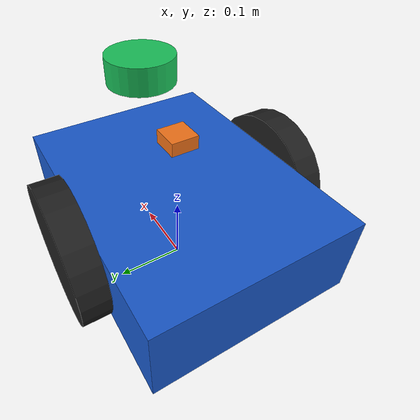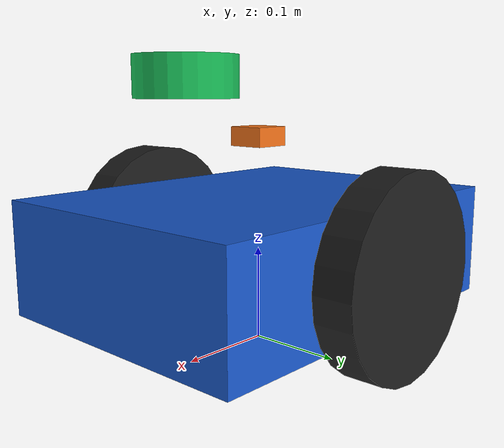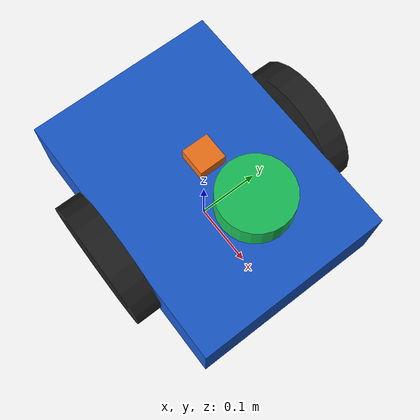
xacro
<?xml version="1.0"?>
<robot
  name="physical_ai_robot"
  xmlns:xacro="http://www.ros.org/wiki/xacro">

  <!-- Robot dimensions in meters. -->
  <xacro:property name="base_length" value="0.40"/>
  <xacro:property name="base_width" value="0.30"/>
  <xacro:property name="base_height" value="0.12"/>

  <xacro:property name="wheel_radius" value="0.10"/>
  <xacro:property name="wheel_width" value="0.04"/>
  <xacro:property
    name="wheel_y"
    value="${base_width / 2.0 + wheel_width / 2.0}"/>

  <xacro:property name="caster_radius" value="0.04"/>

  <!-- Link masses in kilograms. -->
  <xacro:property name="base_mass" value="5.0"/>
  <xacro:property name="wheel_mass" value="0.5"/>
  <xacro:property name="caster_mass" value="0.2"/>
  <xacro:property name="lidar_mass" value="0.10"/>
  <xacro:property name="imu_mass" value="0.05"/>

  <material name="blue">
    <color rgba="0.10 0.35 0.80 1.0"/>
  </material>

  <material name="dark_gray">
    <color rgba="0.12 0.12 0.12 1.0"/>
  </material>

  <material name="silver">
    <color rgba="0.65 0.65 0.65 1.0"/>
  </material>

  <material name="sensor_green">
    <color rgba="0.10 0.75 0.35 1.0"/>
  </material>

  <material name="sensor_orange">
    <color rgba="0.95 0.45 0.10 1.0"/>
  </material>

  <xacro:macro name="box_inertia" params="mass x y z">
    <inertial>
      <mass value="${mass}"/>
      <inertia
        ixx="${mass * (y * y + z * z) / 12.0}"
        ixy="0.0"
        ixz="0.0"
        iyy="${mass * (x * x + z * z) / 12.0}"
        iyz="0.0"
        izz="${mass * (x * x + y * y) / 12.0}"/>
    </inertial>
  </xacro:macro>

  <xacro:macro name="wheel_inertia" params="mass radius length">
    <inertial>
      <origin xyz="0 0 0" rpy="1.57079632679 0 0"/>
      <mass value="${mass}"/>
      <inertia
        ixx="${mass * (3.0 * radius * radius + length * length) / 12.0}"
        ixy="0.0"
        ixz="0.0"
        iyy="${mass * (3.0 * radius * radius + length * length) / 12.0}"
        iyz="0.0"
        izz="${mass * radius * radius / 2.0}"/>
    </inertial>
  </xacro:macro>

  <xacro:macro name="cylinder_inertia" params="mass radius length">
    <inertial>
      <mass value="${mass}"/>
      <inertia
        ixx="${mass * (3.0 * radius * radius + length * length) / 12.0}"
        ixy="0.0"
        ixz="0.0"
        iyy="${mass * (3.0 * radius * radius + length * length) / 12.0}"
        iyz="0.0"
        izz="${mass * radius * radius / 2.0}"/>
    </inertial>
  </xacro:macro>

  <xacro:macro name="sphere_inertia" params="mass radius">
    <inertial>
      <mass value="${mass}"/>
      <inertia
        ixx="${2.0 * mass * radius * radius / 5.0}"
        ixy="0.0"
        ixz="0.0"
        iyy="${2.0 * mass * radius * radius / 5.0}"
        iyz="0.0"
        izz="${2.0 * mass * radius * radius / 5.0}"/>
    </inertial>
  </xacro:macro>

  <!-- Ground projection of the robot body frame. -->
  <link name="base_footprint"/>

  <link name="base_link">
    <visual>
      <geometry>
        <box size="${base_length} ${base_width} ${base_height}"/>
      </geometry>
      <material name="blue"/>
    </visual>

    <collision>
      <geometry>
        <box size="${base_length} ${base_width} ${base_height}"/>
      </geometry>
    </collision>

    <xacro:box_inertia
      mass="${base_mass}"
      x="${base_length}"
      y="${base_width}"
      z="${base_height}"/>
  </link>

  <joint name="base_joint" type="fixed">
    <parent link="base_footprint"/>
    <child link="base_link"/>
    <origin xyz="0 0 ${wheel_radius}" rpy="0 0 0"/>
  </joint>

  <xacro:macro name="wheel" params="side y_position">
    <link name="${side}_wheel_link">
      <visual>
        <origin xyz="0 0 0" rpy="1.57079632679 0 0"/>
        <geometry>
          <cylinder radius="${wheel_radius}" length="${wheel_width}"/>
        </geometry>
        <material name="dark_gray"/>
      </visual>

      <collision>
        <origin xyz="0 0 0" rpy="1.57079632679 0 0"/>
        <geometry>
          <cylinder radius="${wheel_radius}" length="${wheel_width}"/>
        </geometry>
      </collision>

      <xacro:wheel_inertia
        mass="${wheel_mass}"
        radius="${wheel_radius}"
        length="${wheel_width}"/>
    </link>

    <joint name="${side}_wheel_joint" type="continuous">
      <parent link="base_link"/>
      <child link="${side}_wheel_link"/>
      <origin xyz="0 ${y_position} 0" rpy="0 0 0"/>
      <axis xyz="0 1 0"/>
    </joint>
  </xacro:macro>

  <xacro:wheel side="left" y_position="${wheel_y}"/>
  <xacro:wheel side="right" y_position="${-wheel_y}"/>

  <link name="caster_link">
    <visual>
      <geometry>
        <sphere radius="${caster_radius}"/>
      </geometry>
      <material name="silver"/>
    </visual>

    <collision>
      <geometry>
        <sphere radius="${caster_radius}"/>
      </geometry>
    </collision>

    <xacro:sphere_inertia
      mass="${caster_mass}"
      radius="${caster_radius}"/>
  </link>

  <joint name="caster_joint" type="fixed">
    <parent link="base_link"/>
    <child link="caster_link"/>
    <origin
      xyz="${-base_length / 3.0} 0 ${caster_radius - wheel_radius}"
      rpy="0 0 0"/>
  </joint>

  <!-- 2D LiDAR mounted above the front of the base. -->
  <link name="lidar_link">
    <visual>
      <geometry>
        <cylinder radius="0.05" length="0.04"/>
      </geometry>
      <material name="sensor_green"/>
    </visual>

    <collision>
      <geometry>
        <cylinder radius="0.05" length="0.04"/>
      </geometry>
    </collision>

    <xacro:cylinder_inertia mass="${lidar_mass}" radius="0.05" length="0.04"/>
  </link>

  <joint name="lidar_joint" type="fixed">
    <parent link="base_link"/>
    <child link="lidar_link"/>
    <origin xyz="0.10 0 0.18" rpy="0 0 0"/>
  </joint>

  <!-- IMU mounted near the center of the base. -->
  <link name="imu_link">
    <visual>
      <geometry>
        <box size="0.04 0.04 0.02"/>
      </geometry>
      <material name="sensor_orange"/>
    </visual>

    <collision>
      <geometry>
        <box size="0.04 0.04 0.02"/>
      </geometry>
    </collision>

    <xacro:box_inertia mass="${imu_mass}" x="0.04" y="0.04" z="0.02"/>
  </link>

  <joint name="imu_joint" type="fixed">
    <parent link="base_link"/>
    <child link="imu_link"/>
    <origin xyz="0 0 0.12" rpy="0 0 0"/>
  </joint>

  <!-- Gazebo 2D LiDAR sensor. -->
  <gazebo reference="lidar_link">
    <sensor name="lidar_sensor" type="gpu_lidar">
      <gz_frame_id>lidar_link</gz_frame_id>
      <topic>/scan</topic>
      <update_rate>10</update_rate>
      <always_on>true</always_on>
      <visualize>true</visualize>
      <lidar>
        <scan>
          <horizontal>
            <samples>360</samples>
            <resolution>1</resolution>
            <min_angle>-3.14159265359</min_angle>
            <max_angle>3.14159265359</max_angle>
          </horizontal>
          <vertical>
            <samples>1</samples>
            <resolution>1</resolution>
            <min_angle>0</min_angle>
            <max_angle>0</max_angle>
          </vertical>
        </scan>
        <range>
          <min>0.12</min>
          <max>8.0</max>
          <resolution>0.01</resolution>
        </range>
      </lidar>
    </sensor>
  </gazebo>

  <!-- Gazebo inertial measurement sensor. -->
  <gazebo reference="imu_link">
    <sensor name="imu_sensor" type="imu">
      <gz_frame_id>imu_link</gz_frame_id>
      <topic>/imu</topic>
      <update_rate>50</update_rate>
      <always_on>true</always_on>
    </sensor>
  </gazebo>

  <!-- Gazebo Differential Drive controller. -->
  <gazebo>
    <plugin
      filename="gz-sim-diff-drive-system"
      name="gz::sim::systems::DiffDrive">

      <!-- Wheel joints. -->
      <left_joint>left_wheel_joint</left_joint>
      <right_joint>right_wheel_joint</right_joint>

      <!-- Differential Drive geometry. -->
      <wheel_separation>${2.0 * wheel_y}</wheel_separation>
      <wheel_radius>${wheel_radius}</wheel_radius>

      <!-- Gazebo Transport topics. -->
      <topic>/cmd_vel</topic>
      <odom_topic>/odom</odom_topic>
      <tf_topic>/tf</tf_topic>

      <!-- Odometry coordinate frames. -->
      <frame_id>odom</frame_id>
      <child_frame_id>base_footprint</child_frame_id>

      <odom_publish_frequency>30</odom_publish_frequency>
    </plugin>
  </gazebo>

  <!-- Publish the moving wheel joints for robot_state_publisher and RViz. -->
  <gazebo>
    <plugin
      filename="gz-sim-joint-state-publisher-system"
      name="gz::sim::systems::JointStatePublisher">
      <topic>/joint_states</topic>
      <joint_name>left_wheel_joint</joint_name>
      <joint_name>right_wheel_joint</joint_name>
    </plugin>
  </gazebo>

</robot>
